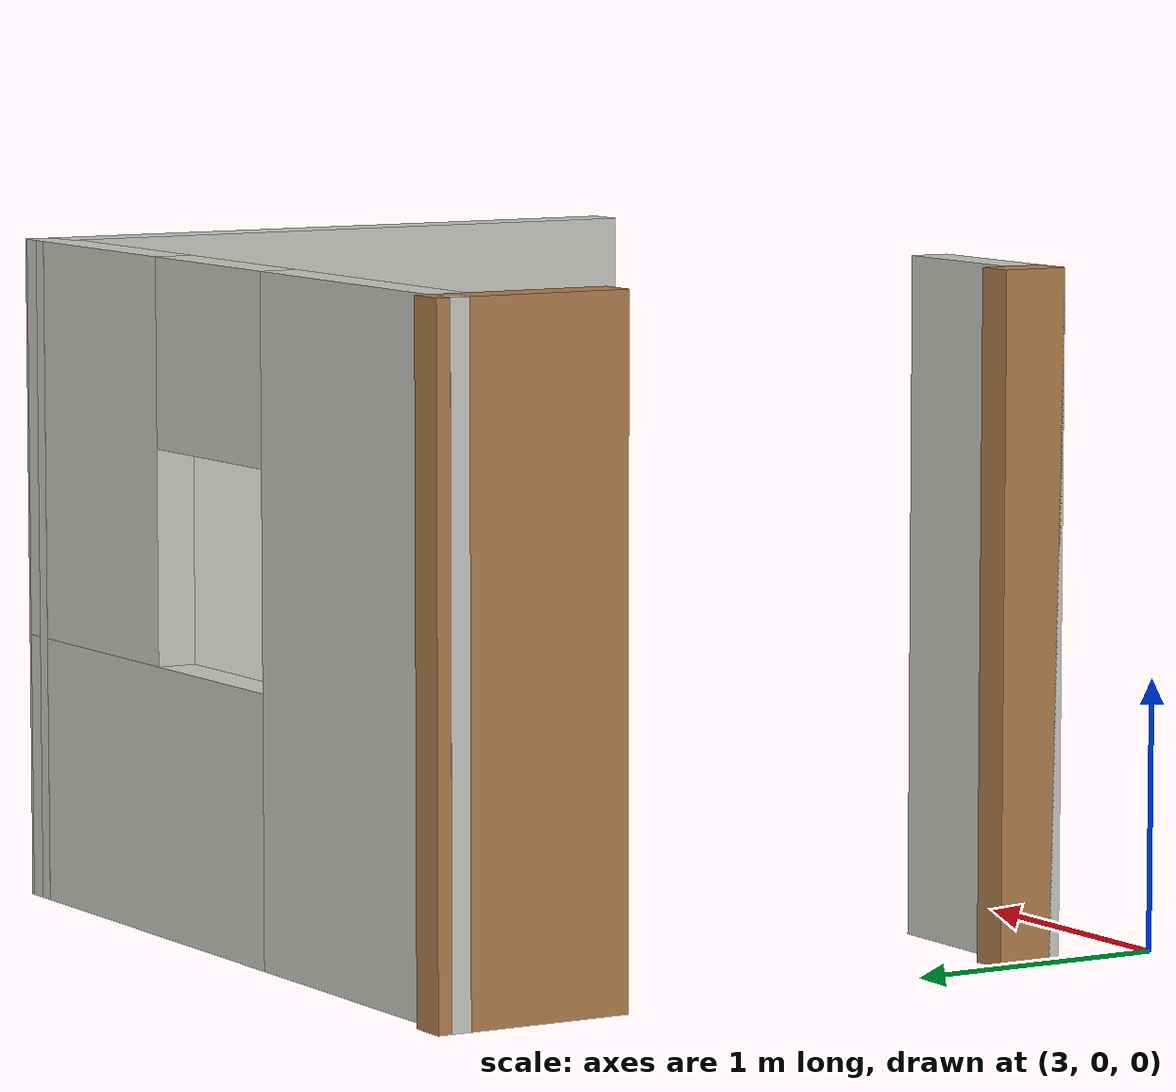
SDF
<?xml version='1.0'?>
<sdf version='1.6'>
  <model name='restroom'>
    <pose frame=''>4.56461 1.68659 0 0 -0 0</pose>
    <link name='Wall_12'>
      <collision name='Wall_12_Collision'>
        <geometry>
          <box>
            <size>0.75 0.15 2.5</size>
          </box>
        </geometry>
        <pose frame=''>0 0 1.25 0 -0 0</pose>
      </collision>
      <visual name='Wall_12_Visual'>
        <pose frame=''>0 0 1.25 0 -0 0</pose>
        <geometry>
          <box>
            <size>0.75 0.15 2.5</size>
          </box>
        </geometry>
        <material>
          <script>
            <uri>file://media/materials/scripts/gazebo.material</uri>
            <name>Gazebo/Wood</name>
          </script>
          <ambient>1 1 1 1</ambient>
        </material>
        <meta>
          <layer>0</layer>
        </meta>
      </visual>
      <pose frame=''>-1.52425 0.914238 0 0 -0 -1.5708</pose>
    </link>
    <link name='Wall_14'>
      <pose frame=''>-0.006278 1.17375 0 0 -0 0.007976</pose>
      <visual name='Wall_14_Visual_0'>
        <pose frame=''>-0.924011 0 1.25 0 -0 0</pose>
        <geometry>
          <box>
            <size>1.33802 0.15 2.5</size>
          </box>
        </geometry>
        <material>
          <script>
            <uri>file://media/materials/scripts/gazebo.material</uri>
            <name>Gazebo/CeilingTiled</name>
          </script>
          <ambient>1 1 1 1</ambient>
        </material>
        <meta>
          <layer>0</layer>
        </meta>
      </visual>
      <collision name='Wall_14_Collision_0'>
        <geometry>
          <box>
            <size>1.33802 0.15 2.5</size>
          </box>
        </geometry>
        <pose frame=''>-0.924011 0 1.25 0 -0 0</pose>
      </collision>
      <visual name='Wall_14_Visual_1'>
        <pose frame=''>0.669012 0 0.5 0 -0 0</pose>
        <geometry>
          <box>
            <size>1.84802 0.15 1</size>
          </box>
        </geometry>
        <material>
          <script>
            <uri>file://media/materials/scripts/gazebo.material</uri>
            <name>Gazebo/CeilingTiled</name>
          </script>
          <ambient>1 1 1 1</ambient>
        </material>
        <meta>
          <layer>0</layer>
        </meta>
      </visual>
      <collision name='Wall_14_Collision_1'>
        <geometry>
          <box>
            <size>1.84802 0.15 1</size>
          </box>
        </geometry>
        <pose frame=''>0.669012 0 0.5 0 -0 0</pose>
      </collision>
      <visual name='Wall_14_Visual_2'>
        <pose frame=''>1.06901 0 1.75 0 -0 0</pose>
        <geometry>
          <box>
            <size>1.04802 0.15 1.5</size>
          </box>
        </geometry>
        <material>
          <script>
            <uri>file://media/materials/scripts/gazebo.material</uri>
            <name>Gazebo/CeilingTiled</name>
          </script>
          <ambient>1 1 1 1</ambient>
        </material>
        <meta>
          <layer>0</layer>
        </meta>
      </visual>
      <collision name='Wall_14_Collision_2'>
        <geometry>
          <box>
            <size>1.04802 0.15 1.5</size>
          </box>
        </geometry>
        <pose frame=''>1.06901 0 1.75 0 -0 0</pose>
      </collision>
      <visual name='Wall_14_Visual_3'>
        <pose frame=''>0.145001 0 2.15 0 -0 0</pose>
        <geometry>
          <box>
            <size>0.8 0.15 0.7</size>
          </box>
        </geometry>
        <material>
          <script>
            <uri>file://media/materials/scripts/gazebo.material</uri>
            <name>Gazebo/CeilingTiled</name>
          </script>
          <ambient>1 1 1 1</ambient>
        </material>
        <meta>
          <layer>0</layer>
        </meta>
      </visual>
      <collision name='Wall_14_Collision_3'>
        <geometry>
          <box>
            <size>0.8 0.15 0.7</size>
          </box>
        </geometry>
        <pose frame=''>0.145001 0 2.15 0 -0 0</pose>
      </collision>
    </link>
    <link name='Wall_16'>
      <collision name='Wall_16_Collision'>
        <geometry>
          <box>
            <size>2.5 0.15 2.5</size>
          </box>
        </geometry>
        <pose frame=''>0 0 1.25 0 -0 0</pose>
      </collision>
      <visual name='Wall_16_Visual'>
        <pose frame=''>0 0 1.25 0 -0 0</pose>
        <geometry>
          <box>
            <size>2.5 0.15 2.5</size>
          </box>
        </geometry>
        <material>
          <script>
            <uri>file://media/materials/scripts/gazebo.material</uri>
            <name>Gazebo/CeilingTiled</name>
          </script>
          <ambient>1 1 1 1</ambient>
        </material>
        <meta>
          <layer>0</layer>
        </meta>
      </visual>
      <pose frame=''>1.52485 0.010853 0 0 -0 -1.5708</pose>
    </link>
    <link name='Wall_18'>
      <collision name='Wall_18_Collision'>
        <geometry>
          <box>
            <size>0.25 0.15 2.5</size>
          </box>
        </geometry>
        <pose frame=''>0 0 1.25 0 -0 0</pose>
      </collision>
      <visual name='Wall_18_Visual'>
        <pose frame=''>0 0 1.25 0 -0 0</pose>
        <geometry>
          <box>
            <size>0.25 0.15 2.5</size>
          </box>
        </geometry>
        <material>
          <script>
            <uri>file://media/materials/scripts/gazebo.material</uri>
            <name>Gazebo/Wood</name>
          </script>
          <ambient>1 1 1 1</ambient>
        </material>
        <meta>
          <layer>0</layer>
        </meta>
      </visual>
      <pose frame=''>-1.48262 -1.16424 0 0 -0 1.5708</pose>
    </link>
    <link name='Wall_20'>
      <collision name='Wall_20_Collision'>
        <geometry>
          <box>
            <size>0.75 0.15 2.5</size>
          </box>
        </geometry>
        <pose frame=''>0 0 1.25 0 -0 0</pose>
      </collision>
      <visual name='Wall_20_Visual'>
        <pose frame=''>0 0 1.25 0 -0 0</pose>
        <geometry>
          <box>
            <size>0.75 0.15 2.5</size>
          </box>
        </geometry>
        <material>
          <script>
            <uri>file://media/materials/scripts/gazebo.material</uri>
            <name>Gazebo/CeilingTiled</name>
          </script>
          <ambient>1 1 1 1</ambient>
        </material>
        <meta>
          <layer>0</layer>
        </meta>
      </visual>
      <pose frame=''>-1.18262 -1.21424 0 0 -0 0</pose>
    </link>
    <static>1</static>
  </model>
</sdf>
